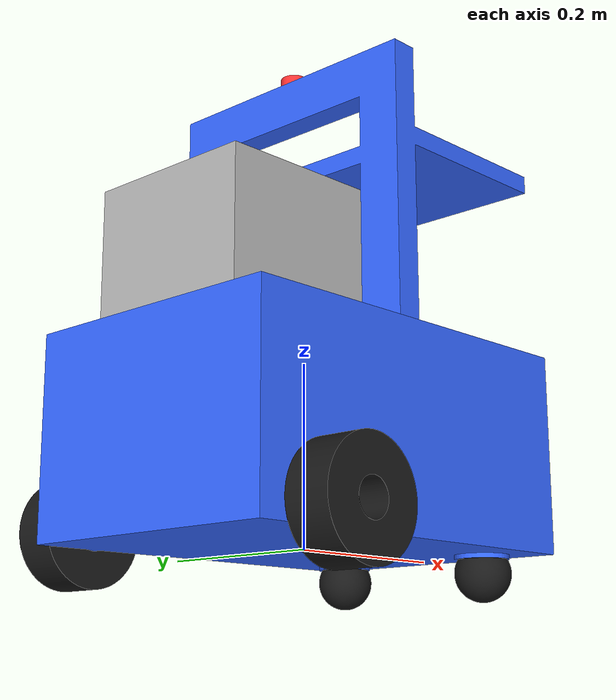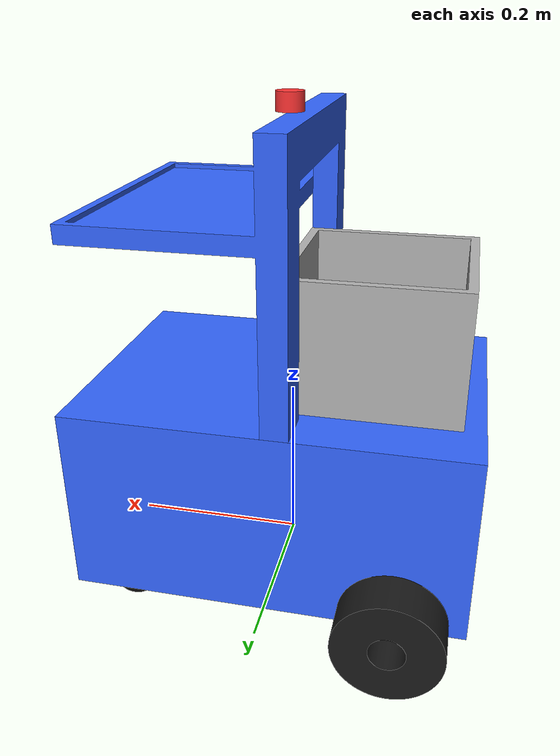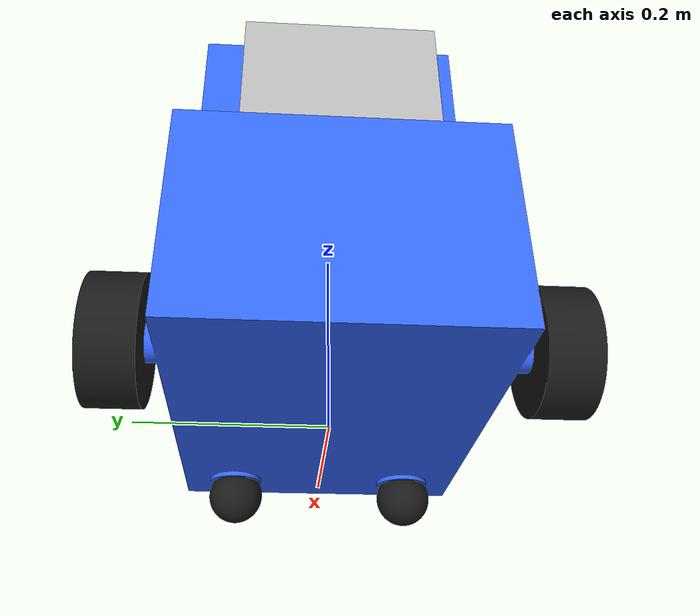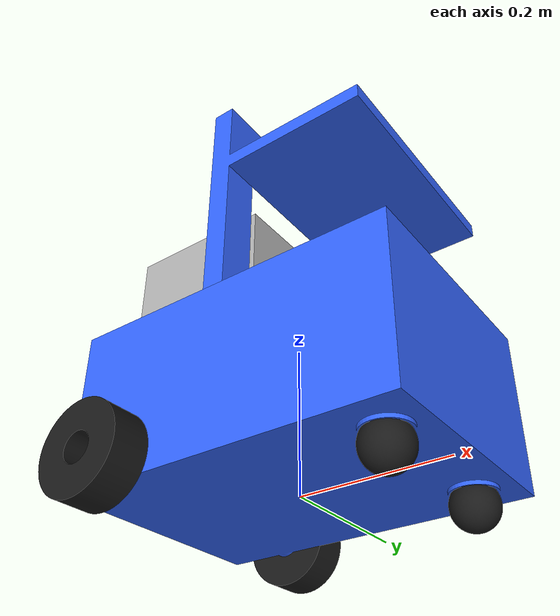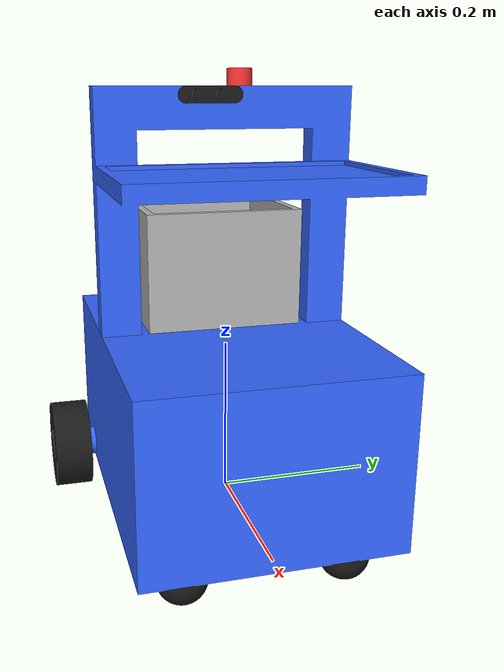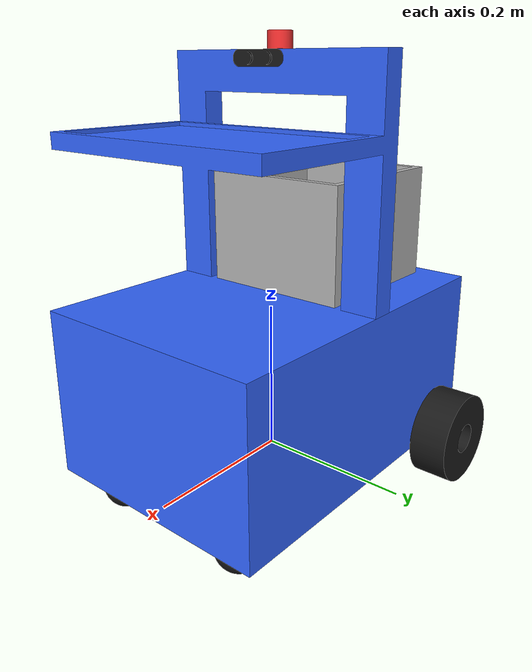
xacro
<?xml version="1.0" ?>
<robot name="home_botv2" xmlns:xacro="http://www.ros.org/wiki/xacro">

<xacro:include filename="$(find home_botv2_description)/urdf/materials.xacro" />
<xacro:include filename="$(find home_botv2_description)/urdf/home_botv2.ros2control" />
<xacro:include filename="$(find home_botv2_description)/urdf/home_botv2.gazebo" />
<link name="base_link">
  <inertial>
    <origin xyz="0 0 0" rpy="0 0 0"/>
    <mass value="5.0"/>
    <inertia ixx="0.040" iyy="0.040" izz="0.072" ixy="0.0" iyz="0.0" ixz="0.0"/>
  </inertial>
  <visual>
    <origin xyz="0 0 0" rpy="0 0 1.5708"/>
    <geometry>
      <mesh filename="package://home_botv2_description/meshes/base_link.stl" scale="1 1 1"/>
    </geometry>
    <material name="blue"/>
  </visual>
  <collision>
    <origin xyz="0 0 0.05" rpy="0 0 0"/>
    <geometry>
      <box size="0.45 0.35 0.12"/>
    </geometry>
  </collision>
</link>

<link name="left_wheel_link_1">
  <inertial>
    <origin xyz="0 0 0" rpy="0 0 0"/>
    <mass value="0.5"/>
    <inertia ixx="0.000516" iyy="0.0009" izz="0.000516" ixy="0.0" iyz="0.0" ixz="0.0"/>
  </inertial>
  <visual>
    <origin xyz="0 0 0" rpy="0 0 1.570"/>
    <geometry>
      <mesh filename="package://home_botv2_description/meshes/left_wheel_link.stl" scale="1 1 1"/>
    </geometry>
    <material name="black"/>
  </visual>
  <collision>
    <origin xyz="0 0 0" rpy="1.5708 0 0"/>
    <geometry>
      <cylinder radius="0.06" length="0.04"/>
    </geometry>
  </collision>
</link>

<link name="right_wheel_link_1">
  <inertial>
    <origin xyz="0 0 0" rpy="0 0 0"/>
    <mass value="0.5"/>
    <inertia ixx="0.000516" iyy="0.0009" izz="0.000516" ixy="0.0" iyz="0.0" ixz="0.0"/>
  </inertial>
  <visual>
    <origin xyz="0 0 0" rpy="0 0 -1.570"/>
    <geometry>
      <mesh filename="package://home_botv2_description/meshes/right_wheel_link.stl" scale="1 1 1"/>
    </geometry>
    <material name="black"/>
  </visual>
  <collision>
    <origin xyz="0 0 0" rpy="-1.5708 0 0"/>
    <geometry>
      <cylinder radius="0.06" length="0.04"/>
    </geometry>
  </collision>
</link>
<link name="caster_left_link_1">
  <inertial>
    <origin xyz="0 0 0" rpy="0 0 0"/>
    <mass value="0.1"/>
    <inertia ixx="0.000016" iyy="0.000016" izz="0.000016" ixy="0.0" iyz="0.0" ixz="0.0"/>
  </inertial>
  <visual>
    <origin xyz="0 0 0" rpy="0 0 0"/>
    <geometry>
      <mesh filename="package://home_botv2_description/meshes/caster_left_link.stl" scale="1 1 1"/>
    </geometry>
    <material name="black"/>
  </visual>
  <collision>
    <origin xyz="0 0 0" rpy="0 0 0"/>
    <geometry>
      <sphere radius="0.02"/>
    </geometry>
  </collision>
</link>

<link name="caster_right_link_1">
  <inertial>
    <origin xyz="0 0 0" rpy="0 0 0"/>
    <mass value="0.1"/>
    <inertia ixx="0.000016" iyy="0.000016" izz="0.000016" ixy="0.0" iyz="0.0" ixz="0.0"/>
  </inertial>
  <visual>
    <origin xyz="0 0 0" rpy="0 0 0"/>
    <geometry>
      <mesh filename="package://home_botv2_description/meshes/caster_right_link.stl" scale="1 1 1"/>
    </geometry>
    <material name="black"/>
  </visual>
  <collision>
    <origin xyz="0 0 0" rpy="0 0 0"/>
    <geometry>
      <sphere radius="0.02"/>
    </geometry>
  </collision>
</link>

<link name="back_box_link_1">
  <inertial>
    <origin xyz="0 0 0" rpy="0 0 0"/>
    <mass value="1.0"/>
    <inertia ixx="0.0066" iyy="0.0066" izz="0.0066" ixy="0.0" iyz="0.0" ixz="0.0"/>
  </inertial>
  <visual>
    <origin xyz="0 0 0" rpy="0 0 0"/>
    <geometry>
      <mesh filename="package://home_botv2_description/meshes/back_box_link.stl" scale="1 1 1"/>
    </geometry>
    <material name="silver"/>
  </visual>
  <collision>
    <origin xyz="0 0 0" rpy="0 0 0"/>
    <geometry>
      <mesh filename="package://home_botv2_description/meshes/back_box_link.stl" scale="1 1 1"/>
    </geometry>
  </collision>
</link>

<link name="tower_link_1">
  <inertial>
    <origin xyz="0 0 0" rpy="0 0 0"/>
    <mass value="2.0"/>
    <inertia ixx="0.0079" iyy="0.0079" izz="0.0025" ixy="0.0" iyz="0.0" ixz="0.0"/>
  </inertial>
  <visual>
    <origin xyz="0 0 0" rpy="0 0 1.57"/>
    <geometry>
      <mesh filename="package://home_botv2_description/meshes/tower_link.stl" scale="1 1 1"/>
    </geometry>
    <material name="blue"/>
  </visual>
  <collision>
    <origin xyz="0 0 0" rpy="0 0 1.57"/>
    <geometry>
      <mesh filename="package://home_botv2_description/meshes/tower_link.stl" scale="1 1 1"/>
    </geometry>
  </collision>
</link>

<link name="camera_link_1">
  <inertial>
    <origin xyz="0 0 0" rpy="0 0 0"/>
    <mass value="0.246"/>
    <inertia ixx="0.0001" iyy="0.0001" izz="0.0001" ixy="0.0" iyz="0.0" ixz="0.0"/>
  </inertial>
  <visual>
    <origin xyz="0 0 0" rpy="0 0 1.57"/>
    <geometry>
      <mesh filename="package://home_botv2_description/meshes/camera_link.stl" scale="1 1 1"/>
    </geometry>
    <material name="black"/>
  </visual>
  <collision>
    <origin xyz="0 0 0" rpy="0 0 1.57"/>
    <geometry>
      <mesh filename="package://home_botv2_description/meshes/camera_link.stl" scale="1 1 1"/>
    </geometry>
  </collision>
</link>

<link name="lidar_link_1">
  <inertial>
    <origin xyz="0 0 0" rpy="0 0 0"/>
    <mass value="0.11"/>
    <inertia ixx="0.000066" iyy="0.000066" izz="0.000088" ixy="0.0" iyz="0.0" ixz="0.0"/>
  </inertial>
  <visual>
    <origin xyz="0 0 0" rpy="0 0 0"/>
    <geometry>
      <mesh filename="package://home_botv2_description/meshes/lidar_link.stl" scale="1 1 1"/>
    </geometry>
    <material name="red"/>
  </visual>
  <collision>
    <origin xyz="0 0 0" rpy="0 0 0"/>
    <geometry>
      <mesh filename="package://home_botv2_description/meshes/lidar_link.stl" scale="1 1 1"/>
    </geometry>
  </collision>
</link>

<joint name="Revolute_1" type="continuous">
  <origin xyz="-0.144945 0.170055 0.02" rpy="0 0 0"/>
  <parent link="base_link"/>
  <child link="left_wheel_link_1"/>
  <axis xyz="0 1 0"/>
</joint>

<joint name="Revolute_2" type="continuous">
  <origin xyz="-0.144945 -0.169945 0.02" rpy="0 0 0"/>
  <parent link="base_link"/>
  <child link="right_wheel_link_1"/>
  <axis xyz="0 1 0"/>
</joint>

<joint name="Rigid_3" type="fixed">
  <origin xyz="0.175055 0.100055 -0.02" rpy="0 0 0"/>
  <parent link="base_link"/>
  <child link="caster_left_link_1"/>
</joint>

<joint name="Rigid_4" type="fixed">
  <origin xyz="0.175055 -0.099945 -0.02" rpy="0 0 0"/>
  <parent link="base_link"/>
  <child link="caster_right_link_1"/>
</joint>

<joint name="Rigid_5" type="fixed">
  <origin xyz="-0.1 0 0.22" rpy="0 0 0"/>
  <parent link="base_link"/>
  <child link="back_box_link_1"/>
</joint>

<joint name="Rigid_6" type="fixed">
  <origin xyz="0 0 0.22" rpy="0 0 0"/>
  <parent link="base_link"/>
  <child link="tower_link_1"/>
</joint>

<joint name="Rigid_7" type="fixed">
  <origin xyz="0 -0.02 0.29" rpy="0 0 0"/>
  <parent link="tower_link_1"/>
  <child link="camera_link_1"/>
</joint>

<joint name="Rigid_8" type="fixed">
  <origin xyz="0.0 0.015 0.3" rpy="0 0 0"/>
  <parent link="tower_link_1"/>
  <child link="lidar_link_1"/>
</joint>

<gazebo reference="lidar_link_1">
  <sensor name="gpu_lidar" type="gpu_lidar">
    <update_rate>20</update_rate>
    <always_on>true</always_on>
    <visualize>true</visualize>
    <lidar>
      <scan>
        <horizontal>
          <samples>320</samples>
          <resolution>1</resolution>
          <min_angle>-3.14159</min_angle>
          <max_angle>3.14159</max_angle>
        </horizontal>
      </scan>
      <range>
        <min>0.30</min>
        <max>12.0</max>
        <resolution>0.01</resolution>
      </range>
    </lidar>
    <always_on>1</always_on>
    <visualize>true</visualize>
    <topic>scan</topic>
    <ignition_frame_id>lidar_link_1</ignition_frame_id>
    <gz_frame_id>lidar_link_1</gz_frame_id>
  </sensor>

</gazebo>

<!-- Camera Sensor (Ignition Gazebo Fortress) -->
<gazebo reference="camera_link_1">
  <sensor name="rgb_camera" type="camera">
    <update_rate>20</update_rate>
    <always_on>true</always_on>
    <visualize>true</visualize>
    <camera>
      <horizontal_fov>1.3962634</horizontal_fov>
      <image>
        <width>640</width>
        <height>480</height>
        <format>R8G8B8</format>
      </image>
      <clip>
        <near>0.1</near>
        <far>100</far>
      </clip>
    </camera>
    <topic>camera/image_raw</topic>
    <gz_frame_id>camera_link_1</gz_frame_id>
  </sensor>
</gazebo>

</robot>

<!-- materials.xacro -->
<robot name="home_botv2" xmlns:xacro="http://www.ros.org/wiki/xacro" >

<material name="silver">
  <color rgba="0.700 0.700 0.700 1.000"/>
</material>
<material name="black">
  <color rgba="0.1 0.1 0.1 1"/>
</material>

<material name="blue">
  <color rgba="0.2 0.4 1.0 1"/>
</material>

<material name="red">
  <color rgba="1 0.2 0.2 1"/>
</material>

</robot>

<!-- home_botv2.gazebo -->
<robot name="home_botv2" xmlns:xacro="http://www.ros.org/wiki/xacro" >

<xacro:property name="body_color" value="Gazebo/Blue" />

<gazebo reference="base_link">
  <material>${body_color}</material>
  <mu1>0.1</mu1>
  <mu2>0.1</mu2>
  <self_collide>false</self_collide>
  <gravity>true</gravity>
</gazebo>

<gazebo reference="left_wheel_link_1">
  <material>Gazebo/Black</material>
  <mu1>1.0</mu1>
  <mu2>1.0</mu2>
  <kp>1000000.0</kp>
  <kd>100.0</kd>
  <self_collide>false</self_collide>
</gazebo>

<gazebo reference="right_wheel_link_1">
  <material>Gazebo/Black</material>
  <mu1>1.0</mu1>
  <mu2>1.0</mu2>
  <kp>1000000.0</kp>
  <kd>100.0</kd>
  <self_collide>false</self_collide>
</gazebo>

<gazebo reference="caster_left_link_1">
  <material>Gazebo/Black</material>
  <mu1>0.00</mu1>
  <mu2>0.00</mu2>
  <kp>1000000.0</kp>
  <kd>100.0</kd>
  <self_collide>false</self_collide>
</gazebo>

<gazebo reference="caster_right_link_1">
  <material>Gazebo/Black</material>
  <mu1>0.00</mu1>
  <mu2>0.00</mu2>
  <kp>1000000.0</kp>
  <kd>100.0</kd>
  <self_collide>false</self_collide>
</gazebo>

<gazebo reference="back_box_link_1">
  <material>Gazebo/sliver</material>
  <mu1>0.2</mu1>
  <mu2>0.2</mu2>
  <self_collide>false</self_collide>
</gazebo>

<gazebo reference="tower_link_1">
  <material>${body_color}</material>
  <mu1>0.2</mu1>
  <mu2>0.2</mu2>
  <self_collide>false</self_collide>
</gazebo>

<gazebo reference="camera_link_1">
  <material>Gazebo/Black</material>
  <mu1>0.2</mu1>
  <mu2>0.2</mu2>
  <self_collide>false</self_collide>
</gazebo>

<gazebo reference="lidar_link_1">
  <material>Gazebo/Red</material>
  <mu1>0.2</mu1>
  <mu2>0.2</mu2>
  <self_collide>false</self_collide>
</gazebo>

<gazebo>
  <plugin
      filename="libignition-gazebo-diff-drive-system.so"
      name="ignition::gazebo::systems::DiffDrive">

    <left_joint>Revolute_1</left_joint>
    <right_joint>Revolute_2</right_joint>

    <wheel_separation>0.34</wheel_separation>
    <wheel_radius>0.06</wheel_radius>

    <topic>/cmd_vel</topic>

    <odom_topic>/odom</odom_topic>

    <frame_id>odom</frame_id>
    <child_frame_id>base_link</child_frame_id>

    <publish_odom>true</publish_odom>
    <publish_odom_tf>true</publish_odom_tf>
    <publish_wheel_tf>false</publish_wheel_tf>

    <odom_publish_frequency>50</odom_publish_frequency>

    <max_linear_acceleration>1.5</max_linear_acceleration>
    <min_linear_acceleration>-1.5</min_linear_acceleration>
    <max_angular_acceleration>2.0</max_angular_acceleration>
    <min_angular_acceleration>-2.0</min_angular_acceleration>

  </plugin>
</gazebo>

<gazebo>
  <plugin
    filename="gz-sim-joint-state-publisher-system"
    name="gz::sim::systems::JointStatePublisher">
  </plugin>
</gazebo>

<gazebo>
  <plugin
    filename="ignition-gazebo-sensors-system"
    name="ignition::gazebo::systems::Sensors">
    <render_engine>ogre2</render_engine>
  </plugin>
</gazebo>

</robot>
